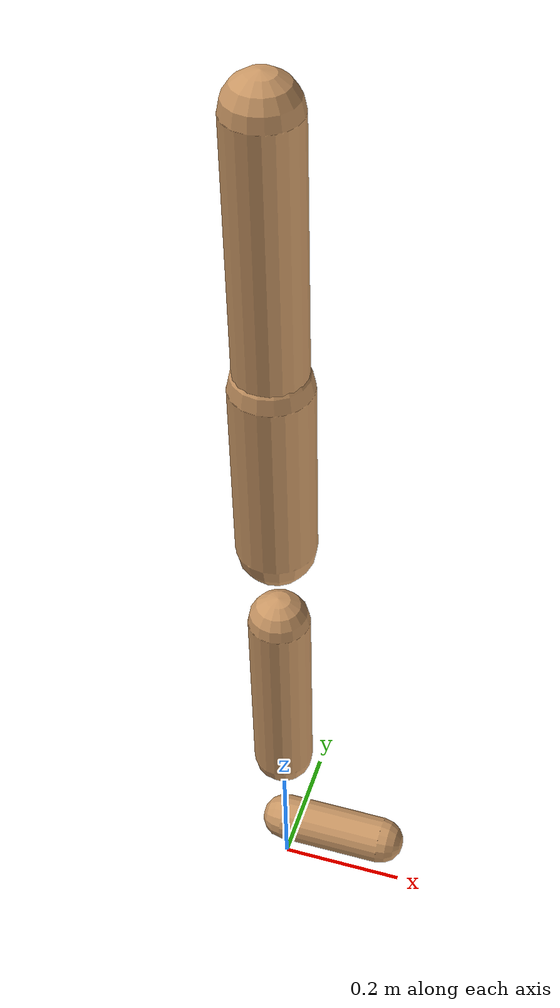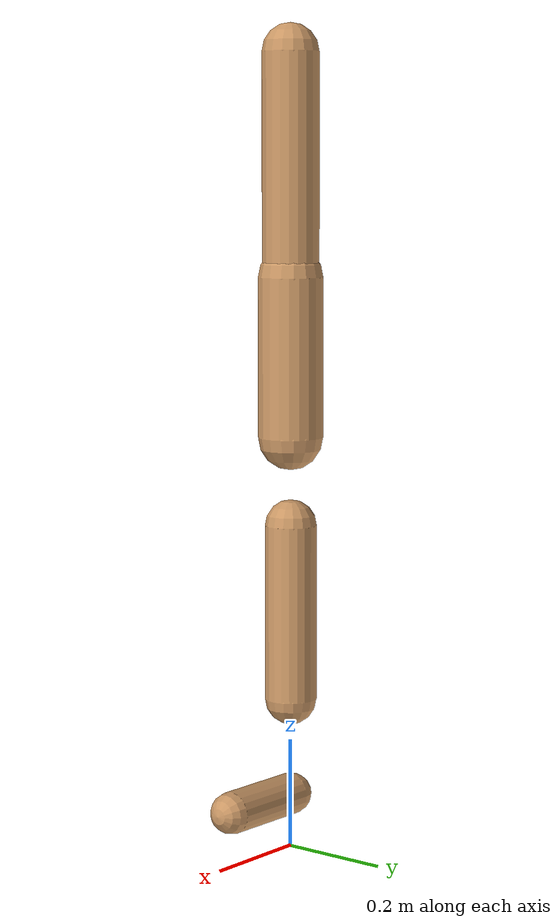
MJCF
<mujoco model="walker2d">
  <compiler angle="degree" coordinate="global" inertiafromgeom="true" />
  <default>
    <joint armature="0.01" damping=".1" limited="true" />
    <geom conaffinity="0" condim="3" contype="1" density="1000" friction="0.8 .1 .1" rgba="0.8 0.6 .4 1" />
  </default>
  <option integrator="RK4" timestep="0.002" />
  <worldbody>

    <body name="torso" pos="0 0 -0.3392381905619096">
      <joint armature="0" axis="1 0 0" damping="0" limited="false" name="ignorex" pos="0 0 0" stiffness="0" type="slide" />
      <joint armature="0" axis="0 0 1" damping="0" limited="false" name="ignorez" pos="0 0 0" ref="1.25" stiffness="0" type="slide" />
      <joint armature="0" axis="0 1 0" damping="0" limited="false" name="ignorey" pos="0 0 0" stiffness="0" type="hinge" />
      <geom fromto="0 0 1.45 0 0 1.05" name="torso_geom" size="0.05153857937566325" type="capsule" />
      <body name="thigh">
        <joint axis="0 -1 0" name="thigh_joint" pos="0 0 1.05" range="-150 0" type="hinge" />
        <geom fromto="0.0 0.0 1.05 0.0 0.0 0.760691774476694" name="thigh_geom" size="0.05895830859759152" type="capsule" />
        <body name="leg" pos="0.0 0.0 0.16069177447669403">
          <joint axis="0 -1 0" name="leg_joint" pos="0 0 0.6" range="-150 0" type="hinge" />
          <geom fromto="0.0 0.0 0.6 0.0 0.0 0.2785464160852156" name="leg_geom" size="0.04716664687807321" type="capsule" />
          <body name="foot" pos="0.0 0.0 0.17854641608521557">
            <joint axis="0 -1 0" name="foot_joint" pos="0 0 0.1" range="-45 45" type="hinge" />
            <geom fromto="0.0 0.0 0.09999999999999999 0.16854036712909926 0.0 0.09999999999999999" name="foot_geom" size="0.03784298539786982" type="capsule" />
          </body>
        </body>
      </body>

      <body name="thigh_left">
        <joint axis="0 -1 0" name="thigh_left_joint" pos="0 0 1.05" range="-150 0" type="hinge" />
        <geom fromto="0.0 0.0 1.05 0.0 0.0 0.760691774476694" name="thigh_left_geom" rgba=".7 .3 .6 1" size="0.05895830859759152" type="capsule" />
        <body name="leg_left" pos="0.0 0.0 0.16069177447669403">
          <joint axis="0 -1 0" name="leg_left_joint" pos="0 0 0.6" range="-150 0" type="hinge" />
          <geom fromto="0.0 0.0 0.6 0.0 0.0 0.2785464160852156" name="leg_left_geom" rgba=".7 .3 .6 1" size="0.04716664687807321" type="capsule" />
          <body name="foot_left" pos="0.0 0.0 0.17854641608521557">
            <joint axis="0 -1 0" name="foot_left_joint" pos="0 0 0.1" range="-45 45" type="hinge" />
            <geom fromto="0.0 0.0 0.09999999999999999 0.16854036712909926 0.0 0.09999999999999999" name="foot_left_geom" rgba=".7 .3 .6 1" size="0.03784298539786982" type="capsule" />
          </body>
        </body>
      </body>
    </body>
  </worldbody>
  <actuator>

    <motor ctrllimited="true" ctrlrange="-1.0 1.0" gear="100" joint="thigh_joint" />
    <motor ctrllimited="true" ctrlrange="-1.0 1.0" gear="100" joint="leg_joint" />
    <motor ctrllimited="true" ctrlrange="-1.0 1.0" gear="100" joint="foot_joint" />
    <motor ctrllimited="true" ctrlrange="-1.0 1.0" gear="100" joint="thigh_left_joint" />
    <motor ctrllimited="true" ctrlrange="-1.0 1.0" gear="100" joint="leg_left_joint" />
    <motor ctrllimited="true" ctrlrange="-1.0 1.0" gear="100" joint="foot_left_joint" />

  </actuator>
</mujoco>
